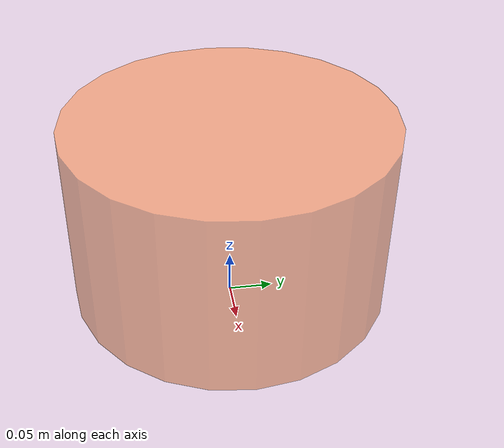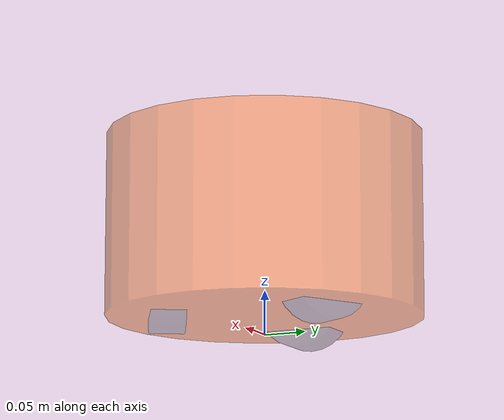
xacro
<robot name="mycar" xmlns:xacro="http://wiki.ros.org/xacro">

    <xacro:property name="footprint_radius" value="0.001" />
    <link name="base_footprint">
        <visual>
            <geometry>
                <sphere radius="${footprint_radius}" />
            </geometry>
        </visual>
    </link>

    <xacro:property name="base_radius" value="0.18" />
    <xacro:property name="base_length" value="0.21" />
    <xacro:property name="lidi" value="0.02" />
    <xacro:property name="base_joint_z" value="${base_length / 2 + lidi}" />
    <link name="base_link">
        <visual>
            <geometry>
                <cylinder radius="${base_radius}" length="${base_length}" />
            </geometry>

            <origin xyz="0 0 0" rpy="0 0 0" />

            <material name="baselink_color">
                <color rgba="1.0 0.5 0.2 0.5" />
            </material>
        </visual>

    </link>

    <joint name="link2footprint" type="fixed">
        <parent link="base_footprint"  />
        <child link="base_link" />
        <origin xyz="0 0 ${base_joint_z}" rpy="0 0 0" />
    </joint>

    <xacro:property name="wheel_radius" value="0.05" />
    <xacro:property name="wheel_length" value="0.04" />
    <xacro:property name="PI" value="3.1415927" />
    <xacro:property name="wheel_joint_z" value="${(base_length / 2 + lidi - wheel_radius) * -1}" />

    <xacro:macro name="wheel_func" params="wheel_name x_axis y_axis yaw">

        <link name="${wheel_name}_wheel">
            <visual>
                <geometry>
                    <cylinder radius="${wheel_radius}" length="${wheel_length}" />
                </geometry>

                <origin xyz="0 0 0" rpy="${PI / 2} 0 0" />

                <material name="wheel_color">
                    <color rgba="0 0 0 0.3" />
                </material>
            </visual>

        </link>

        <joint name="${wheel_name}2link" type="continuous">
            <parent link="base_link"  />
            <child link="${wheel_name}_wheel" />

            <origin xyz="${x_axis} ${y_axis} ${wheel_joint_z}" rpy="0 0 ${yaw}" />
            <axis xyz="1 1 0" />
        </joint>

    </xacro:macro>

    <xacro:wheel_func wheel_name="left" x_axis="0.055" y_axis="0.095" yaw="-0.5236"/>
    <xacro:wheel_func wheel_name="right" x_axis="0.055" y_axis="-0.095" yaw="0.5236"/>
    <xacro:wheel_func wheel_name="back" x_axis="-0.11" y_axis="0" yaw="-1.5708"/>

</robot>
